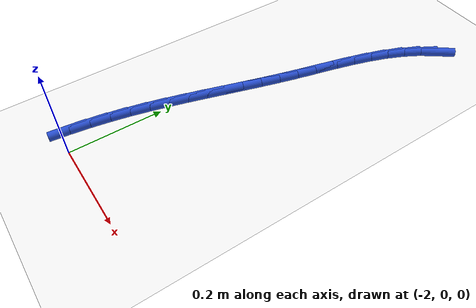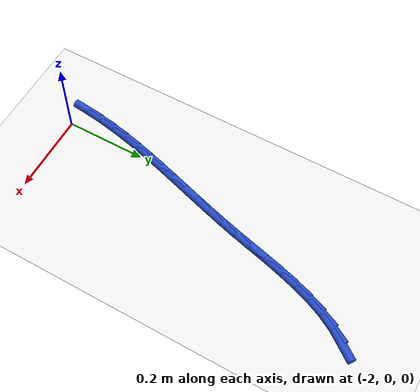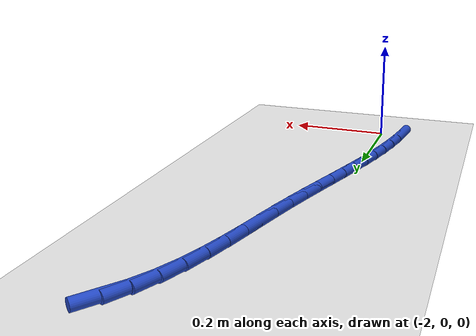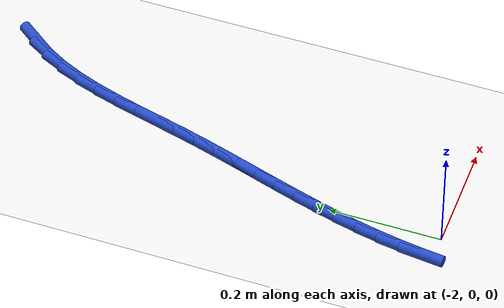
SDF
<sdf version="1.6">
 <world name="default">
  <model name="ground_plane">
   <static>1</static>
   <link name="link">
    <collision name="collision">
     <geometry><plane><normal>0 0 1</normal><size>100 100</size></plane></geometry>
     <surface><friction><ode><mu>100</mu><mu2>50</mu2></ode></friction></surface>
    </collision>
    <visual name="visual">
     <cast_shadows>0</cast_shadows>
     <geometry><plane><normal>0 0 1</normal><size>100 100</size></plane></geometry>
     <material>
      <script><uri>file://media/materials/scripts/gazebo.material</uri><name>Gazebo/WhiteGlow</name></script>
     </material>
    </visual>
   </link>
  </model>
  <model name="line">
   <link name="link_60">
    <pose>-1.8025410959293975 0.8127103608938179 0.01 0 1.57 0.9229240602292601</pose>
    <collision name="collision">
     <geometry><cylinder><radius>0.01</radius><length>0.08</length></cylinder></geometry>
    </collision>
    <visual name="visual">
     <material>
      <script><name>Gazebo/Blue</name><uri>file://media/materials/scripts/gazebo.material</uri></script>
     </material>
     <geometry><cylinder><radius>0.01</radius><length>0.08</length></cylinder></geometry>
    </visual>
   </link>
   <link name="link_61">
    <pose>-1.8258519009762086 0.7819106914496315 0.01 0 1.57 1.0460079330104235</pose>
    <collision name="collision">
     <geometry><cylinder><radius>0.01</radius><length>0.08</length></cylinder></geometry>
    </collision>
    <visual name="visual">
     <material>
      <script><name>Gazebo/Blue</name><uri>file://media/materials/scripts/gazebo.material</uri></script>
     </material>
     <geometry><cylinder><radius>0.01</radius><length>0.08</length></cylinder></geometry>
    </visual>
   </link>
   <link name="link_62">
    <pose>-1.8457044259619007 0.7476193830108421 0.01 0 1.57 1.1428306513928117</pose>
    <collision name="collision">
     <geometry><cylinder><radius>0.01</radius><length>0.08</length></cylinder></geometry>
    </collision>
    <visual name="visual">
     <material>
      <script><name>Gazebo/Blue</name><uri>file://media/materials/scripts/gazebo.material</uri></script>
     </material>
     <geometry><cylinder><radius>0.01</radius><length>0.08</length></cylinder></geometry>
    </visual>
   </link>
   <link name="link_63">
    <pose>-1.8626607407265683 0.7104476149697982 0.01 0 1.57 1.2157701263513419</pose>
    <collision name="collision">
     <geometry><cylinder><radius>0.01</radius><length>0.08</length></cylinder></geometry>
    </collision>
    <visual name="visual">
     <material>
      <script><name>Gazebo/Blue</name><uri>file://media/materials/scripts/gazebo.material</uri></script>
     </material>
     <geometry><cylinder><radius>0.01</radius><length>0.08</length></cylinder></geometry>
    </visual>
   </link>
   <link name="link_64">
    <pose>-1.8772829151103054 0.6710065667188511 0.01 0 1.57 1.267764727014938</pose>
    <collision name="collision">
     <geometry><cylinder><radius>0.01</radius><length>0.08</length></cylinder></geometry>
    </collision>
    <visual name="visual">
     <material>
      <script><name>Gazebo/Blue</name><uri>file://media/materials/scripts/gazebo.material</uri></script>
     </material>
     <geometry><cylinder><radius>0.01</radius><length>0.08</length></cylinder></geometry>
    </visual>
   </link>
   <link name="link_65">
    <pose>-1.890133018953206 0.6299074176503496 0.01 0 1.57 1.3013289707779223</pose>
    <collision name="collision">
     <geometry><cylinder><radius>0.01</radius><length>0.08</length></cylinder></geometry>
    </collision>
    <visual name="visual">
     <material>
      <script><name>Gazebo/Blue</name><uri>file://media/materials/scripts/gazebo.material</uri></script>
     </material>
     <geometry><cylinder><radius>0.01</radius><length>0.08</length></cylinder></geometry>
    </visual>
   </link>
   <link name="link_66">
    <pose>-1.9017731220953653 0.5877613471566439 0.01 0 1.57 1.31816900950766</pose>
    <collision name="collision">
     <geometry><cylinder><radius>0.01</radius><length>0.08</length></cylinder></geometry>
    </collision>
    <visual name="visual">
     <material>
      <script><name>Gazebo/Blue</name><uri>file://media/materials/scripts/gazebo.material</uri></script>
     </material>
     <geometry><cylinder><radius>0.01</radius><length>0.08</length></cylinder></geometry>
    </visual>
   </link>
   <link name="link_67">
    <pose>-1.9127652943768765 0.545179534630084 0.01 0 1.57 1.319066214468314</pose>
    <collision name="collision">
     <geometry><cylinder><radius>0.01</radius><length>0.08</length></cylinder></geometry>
    </collision>
    <visual name="visual">
     <material>
      <script><name>Gazebo/Blue</name><uri>file://media/materials/scripts/gazebo.material</uri></script>
     </material>
     <geometry><cylinder><radius>0.01</radius><length>0.08</length></cylinder></geometry>
    </visual>
   </link>
   <link name="link_68">
    <pose>-1.923671605637834 0.5027731594630191 0.01 0 1.57 1.3050130610080215</pose>
    <collision name="collision">
     <geometry><cylinder><radius>0.01</radius><length>0.08</length></cylinder></geometry>
    </collision>
    <visual name="visual">
     <material>
      <script><name>Gazebo/Blue</name><uri>file://media/materials/scripts/gazebo.material</uri></script>
     </material>
     <geometry><cylinder><radius>0.01</radius><length>0.08</length></cylinder></geometry>
    </visual>
   </link>
   <link name="link_69">
    <pose>-1.9350130735118578 0.4611108483672182 0.01 0 1.57 1.2881803336847146</pose>
    <collision name="collision">
     <geometry><cylinder><radius>0.01</radius><length>0.08</length></cylinder></geometry>
    </collision>
    <visual name="visual">
     <material>
      <script><name>Gazebo/Blue</name><uri>file://media/materials/scripts/gazebo.material</uri></script>
     </material>
     <geometry><cylinder><radius>0.01</radius><length>0.08</length></cylinder></geometry>
    </visual>
   </link>
   <link name="link_70">
    <pose>-1.9468644708537663 0.42029867285548117 0.01 0 1.57 1.2765918486878378</pose>
    <collision name="collision">
     <geometry><cylinder><radius>0.01</radius><length>0.08</length></cylinder></geometry>
    </collision>
    <visual name="visual">
     <material>
      <script><name>Gazebo/Blue</name><uri>file://media/materials/scripts/gazebo.material</uri></script>
     </material>
     <geometry><cylinder><radius>0.01</radius><length>0.08</length></cylinder></geometry>
    </visual>
   </link>
   <link name="link_71">
    <pose>-1.9590267326370459 0.3801588576782466 0.01 0 1.57 1.2706787291060937</pose>
    <collision name="collision">
     <geometry><cylinder><radius>0.01</radius><length>0.08</length></cylinder></geometry>
    </collision>
    <visual name="visual">
     <material>
      <script><name>Gazebo/Blue</name><uri>file://media/materials/scripts/gazebo.material</uri></script>
     </material>
     <geometry><cylinder><radius>0.01</radius><length>0.08</length></cylinder></geometry>
    </visual>
   </link>
   <link name="link_72">
    <pose>-1.9712968219937526 0.34050951057217416 0.01 0 1.57 1.2706721375900754</pose>
    <collision name="collision">
     <geometry><cylinder><radius>0.01</radius><length>0.08</length></cylinder></geometry>
    </collision>
    <visual name="visual">
     <material>
      <script><name>Gazebo/Blue</name><uri>file://media/materials/scripts/gazebo.material</uri></script>
     </material>
     <geometry><cylinder><radius>0.01</radius><length>0.08</length></cylinder></geometry>
    </visual>
   </link>
   <link name="link_73">
    <pose>-1.9834717020559416 0.3011687392739223 0.01 0 1.57 1.276711785862021</pose>
    <collision name="collision">
     <geometry><cylinder><radius>0.01</radius><length>0.08</length></cylinder></geometry>
    </collision>
    <visual name="visual">
     <material>
      <script><name>Gazebo/Blue</name><uri>file://media/materials/scripts/gazebo.material</uri></script>
     </material>
     <geometry><cylinder><radius>0.01</radius><length>0.08</length></cylinder></geometry>
    </visual>
   </link>
   <link name="link_74">
    <pose>-1.9953483359556694 0.26195465152015096 0.01 0 1.57 1.2888383096005958</pose>
    <collision name="collision">
     <geometry><cylinder><radius>0.01</radius><length>0.08</length></cylinder></geometry>
    </collision>
    <visual name="visual">
     <material>
      <script><name>Gazebo/Blue</name><uri>file://media/materials/scripts/gazebo.material</uri></script>
     </material>
     <geometry><cylinder><radius>0.01</radius><length>0.08</length></cylinder></geometry>
    </visual>
   </link>
   <link name="link_75">
    <pose>-2.0067236868249916 0.22268535504751882 0.01 0 1.57 1.306982961210119</pose>
    <collision name="collision">
     <geometry><cylinder><radius>0.01</radius><length>0.08</length></cylinder></geometry>
    </collision>
    <visual name="visual">
     <material>
      <script><name>Gazebo/Blue</name><uri>file://media/materials/scripts/gazebo.material</uri></script>
     </material>
     <geometry><cylinder><radius>0.01</radius><length>0.08</length></cylinder></geometry>
    </visual>
   </link>
   <link name="link_76">
    <pose>-2.017394717795965 0.18317895759268482 0.01 0 1.57 1.3309555092560899</pose>
    <collision name="collision">
     <geometry><cylinder><radius>0.01</radius><length>0.08</length></cylinder></geometry>
    </collision>
    <visual name="visual">
     <material>
      <script><name>Gazebo/Blue</name><uri>file://media/materials/scripts/gazebo.material</uri></script>
     </material>
     <geometry><cylinder><radius>0.01</radius><length>0.08</length></cylinder></geometry>
    </visual>
   </link>
   <link name="link_77">
    <pose>-2.027158392000643 0.14325356689230875 0.01 0 1.57 1.3604179852585307</pose>
    <collision name="collision">
     <geometry><cylinder><radius>0.01</radius><length>0.08</length></cylinder></geometry>
    </collision>
    <visual name="visual">
     <material>
      <script><name>Gazebo/Blue</name><uri>file://media/materials/scripts/gazebo.material</uri></script>
     </material>
     <geometry><cylinder><radius>0.01</radius><length>0.08</length></cylinder></geometry>
    </visual>
   </link>
   <link name="link_78">
    <pose>-2.0358120709440377 0.10272832684516593 0.01 0 1.57 1.3935346851221124</pose>
    <collision name="collision">
     <geometry><cylinder><radius>0.01</radius><length>0.08</length></cylinder></geometry>
    </collision>
    <visual name="visual">
     <material>
      <script><name>Gazebo/Blue</name><uri>file://media/materials/scripts/gazebo.material</uri></script>
     </material>
     <geometry><cylinder><radius>0.01</radius><length>0.08</length></cylinder></geometry>
    </visual>
   </link>
   <link name="link_79">
    <pose>-2.043193076877486 0.0615263186558906 0.01 0 1.57 1.4276597046844424</pose>
    <collision name="collision">
     <geometry><cylinder><radius>0.01</radius><length>0.08</length></cylinder></geometry>
    </collision>
    <visual name="visual">
     <material>
      <script><name>Gazebo/Blue</name><uri>file://media/materials/scripts/gazebo.material</uri></script>
     </material>
     <geometry><cylinder><radius>0.01</radius><length>0.08</length></cylinder></geometry>
    </visual>
   </link>
   <link name="link_80">
    <pose>-2.0492122619259603 0.01976187363496415 0.01 0 1.57 1.462759148050959</pose>
    <collision name="collision">
     <geometry><cylinder><radius>0.01</radius><length>0.08</length></cylinder></geometry>
    </collision>
    <visual name="visual">
     <material>
      <script><name>Gazebo/Blue</name><uri>file://media/materials/scripts/gazebo.material</uri></script>
     </material>
     <geometry><cylinder><radius>0.01</radius><length>0.08</length></cylinder></geometry>
    </visual>
   </link>
  </model>
 </world>
</sdf>
